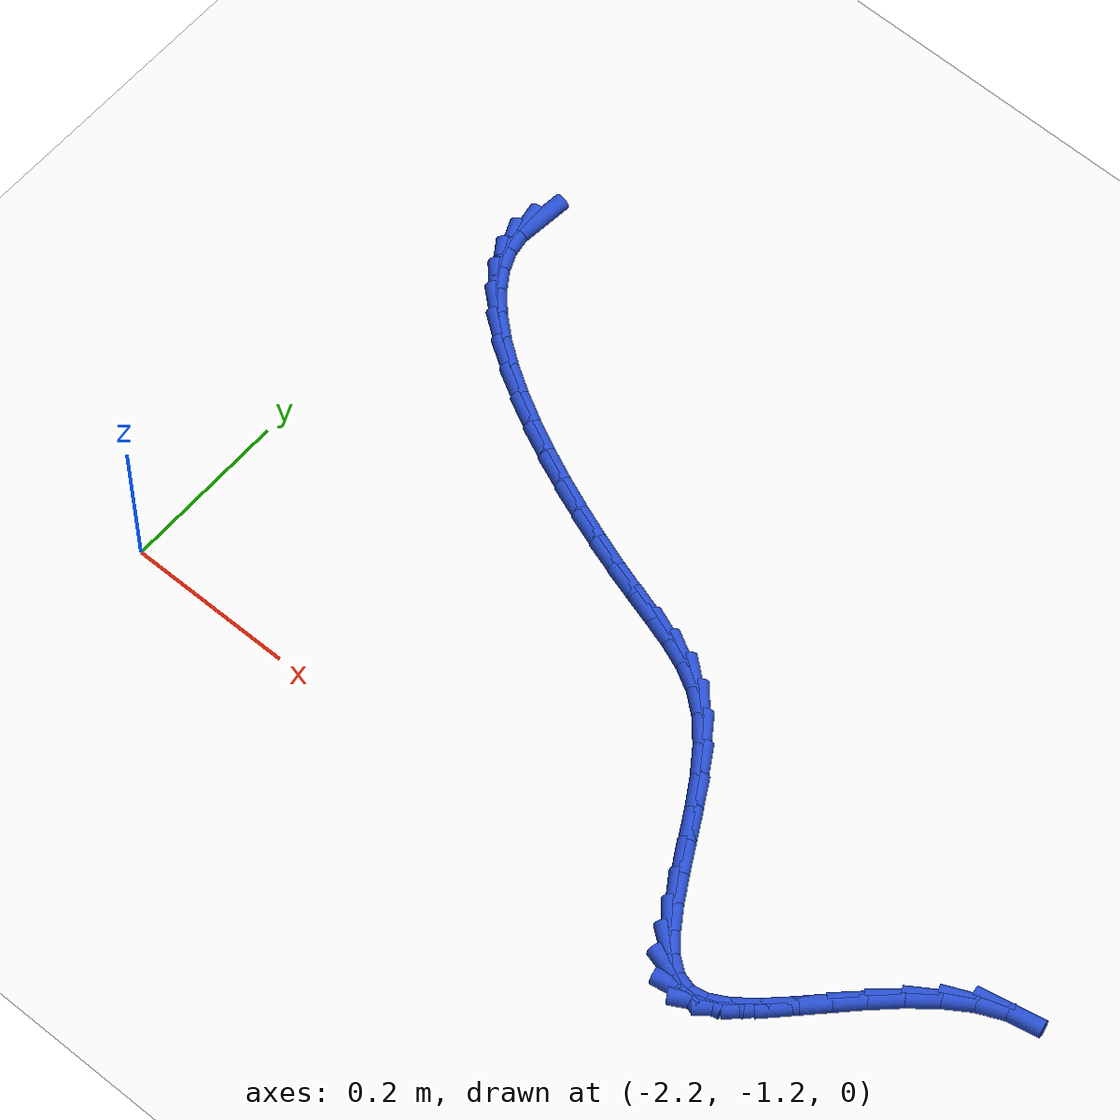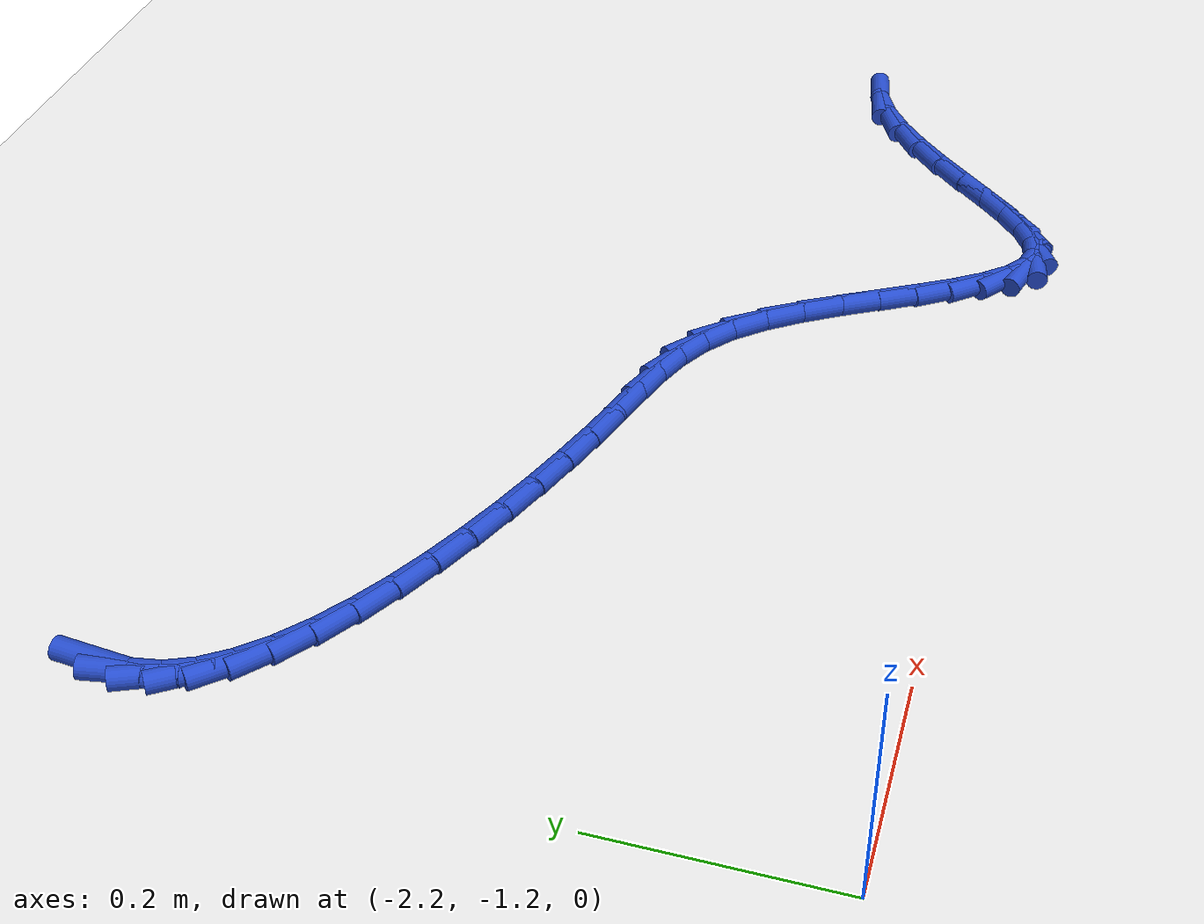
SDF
<sdf version="1.6">
 <world name="default">
  <model name="ground_plane">
   <static>1</static>
   <link name="link">
    <collision name="collision">
     <geometry><plane><normal>0 0 1</normal><size>100 100</size></plane></geometry>
     <surface><friction><ode><mu>100</mu><mu2>50</mu2></ode></friction></surface>
    </collision>
    <visual name="visual">
     <cast_shadows>0</cast_shadows>
     <geometry><plane><normal>0 0 1</normal><size>100 100</size></plane></geometry>
     <material>
      <script><uri>file://media/materials/scripts/gazebo.material</uri><name>Gazebo/WhiteGlow</name></script>
     </material>
    </visual>
   </link>
  </model>
  <model name="line">
   <link name="link_141">
    <pose>-2.1531234752905957 -0.609348968882772 0.01 0 1.57 1.4742450777243057</pose>
    <collision name="collision">
     <geometry><cylinder><radius>0.01</radius><length>0.08</length></cylinder></geometry>
    </collision>
    <visual name="visual">
     <material>
      <script><name>Gazebo/Blue</name><uri>file://media/materials/scripts/gazebo.material</uri></script>
     </material>
     <geometry><cylinder><radius>0.01</radius><length>0.08</length></cylinder></geometry>
    </visual>
   </link>
   <link name="link_142">
    <pose>-2.1555541298114065 -0.6344454526230909 0.01 0 1.57 -1.395660445268938</pose>
    <collision name="collision">
     <geometry><cylinder><radius>0.01</radius><length>0.08</length></cylinder></geometry>
    </collision>
    <visual name="visual">
     <material>
      <script><name>Gazebo/Blue</name><uri>file://media/materials/scripts/gazebo.material</uri></script>
     </material>
     <geometry><cylinder><radius>0.01</radius><length>0.08</length></cylinder></geometry>
    </visual>
   </link>
   <link name="link_143">
    <pose>-2.151208238759221 -0.6590056207835554 0.01 0 1.57 -1.157730686446678</pose>
    <collision name="collision">
     <geometry><cylinder><radius>0.01</radius><length>0.08</length></cylinder></geometry>
    </collision>
    <visual name="visual">
     <material>
      <script><name>Gazebo/Blue</name><uri>file://media/materials/scripts/gazebo.material</uri></script>
     </material>
     <geometry><cylinder><radius>0.01</radius><length>0.08</length></cylinder></geometry>
    </visual>
   </link>
   <link name="link_144">
    <pose>-2.1407092036179516 -0.6829606614308675 0.01 0 1.57 -0.9678378439713753</pose>
    <collision name="collision">
     <geometry><cylinder><radius>0.01</radius><length>0.08</length></cylinder></geometry>
    </collision>
    <visual name="visual">
     <material>
      <script><name>Gazebo/Blue</name><uri>file://media/materials/scripts/gazebo.material</uri></script>
     </material>
     <geometry><cylinder><radius>0.01</radius><length>0.08</length></cylinder></geometry>
    </visual>
   </link>
   <link name="link_145">
    <pose>-2.124680425958652 -0.7062417626278239 0.01 0 1.57 -0.8222598412853989</pose>
    <collision name="collision">
     <geometry><cylinder><radius>0.01</radius><length>0.08</length></cylinder></geometry>
    </collision>
    <visual name="visual">
     <material>
      <script><name>Gazebo/Blue</name><uri>file://media/materials/scripts/gazebo.material</uri></script>
     </material>
     <geometry><cylinder><radius>0.01</radius><length>0.08</length></cylinder></geometry>
    </visual>
   </link>
   <link name="link_146">
    <pose>-2.1037453073523786 -0.7287801124372213 0.01 0 1.57 -0.7111651724665509</pose>
    <collision name="collision">
     <geometry><cylinder><radius>0.01</radius><length>0.08</length></cylinder></geometry>
    </collision>
    <visual name="visual">
     <material>
      <script><name>Gazebo/Blue</name><uri>file://media/materials/scripts/gazebo.material</uri></script>
     </material>
     <geometry><cylinder><radius>0.01</radius><length>0.08</length></cylinder></geometry>
    </visual>
   </link>
   <link name="link_147">
    <pose>-2.0785272493701816 -0.7505068989218565 0.01 0 1.57 -0.6252658404344359</pose>
    <collision name="collision">
     <geometry><cylinder><radius>0.01</radius><length>0.08</length></cylinder></geometry>
    </collision>
    <visual name="visual">
     <material>
      <script><name>Gazebo/Blue</name><uri>file://media/materials/scripts/gazebo.material</uri></script>
     </material>
     <geometry><cylinder><radius>0.01</radius><length>0.08</length></cylinder></geometry>
    </visual>
   </link>
   <link name="link_148">
    <pose>-2.0496496535831197 -0.7713533101445255 0.01 0 1.57 -0.5574976462594152</pose>
    <collision name="collision">
     <geometry><cylinder><radius>0.01</radius><length>0.08</length></cylinder></geometry>
    </collision>
    <visual name="visual">
     <material>
      <script><name>Gazebo/Blue</name><uri>file://media/materials/scripts/gazebo.material</uri></script>
     </material>
     <geometry><cylinder><radius>0.01</radius><length>0.08</length></cylinder></geometry>
    </visual>
   </link>
   <link name="link_149">
    <pose>-2.017735921562245 -0.7912505341680246 0.01 0 1.57 -0.5028357900248931</pose>
    <collision name="collision">
     <geometry><cylinder><radius>0.01</radius><length>0.08</length></cylinder></geometry>
    </collision>
    <visual name="visual">
     <material>
      <script><name>Gazebo/Blue</name><uri>file://media/materials/scripts/gazebo.material</uri></script>
     </material>
     <geometry><cylinder><radius>0.01</radius><length>0.08</length></cylinder></geometry>
    </visual>
   </link>
   <link name="link_150">
    <pose>-1.9834094548786125 -0.810129759055151 0.01 0 1.57 -0.45774956056452326</pose>
    <collision name="collision">
     <geometry><cylinder><radius>0.01</radius><length>0.08</length></cylinder></geometry>
    </collision>
    <visual name="visual">
     <material>
      <script><name>Gazebo/Blue</name><uri>file://media/materials/scripts/gazebo.material</uri></script>
     </material>
     <geometry><cylinder><radius>0.01</radius><length>0.08</length></cylinder></geometry>
    </visual>
   </link>
   <link name="link_151">
    <pose>-1.947293655103276 -0.827922172868701 0.01 0 1.57 -0.41972698442811146</pose>
    <collision name="collision">
     <geometry><cylinder><radius>0.01</radius><length>0.08</length></cylinder></geometry>
    </collision>
    <visual name="visual">
     <material>
      <script><name>Gazebo/Blue</name><uri>file://media/materials/scripts/gazebo.material</uri></script>
     </material>
     <geometry><cylinder><radius>0.01</radius><length>0.08</length></cylinder></geometry>
    </visual>
   </link>
   <link name="link_152">
    <pose>-1.91001192380729 -0.8445589636714712 0.01 0 1.57 -0.38693175979010447</pose>
    <collision name="collision">
     <geometry><cylinder><radius>0.01</radius><length>0.08</length></cylinder></geometry>
    </collision>
    <visual name="visual">
     <material>
      <script><name>Gazebo/Blue</name><uri>file://media/materials/scripts/gazebo.material</uri></script>
     </material>
     <geometry><cylinder><radius>0.01</radius><length>0.08</length></cylinder></geometry>
    </visual>
   </link>
   <link name="link_153">
    <pose>-1.8721876625617087 -0.8599713195262579 0.01 0 1.57 -0.3579652869520564</pose>
    <collision name="collision">
     <geometry><cylinder><radius>0.01</radius><length>0.08</length></cylinder></geometry>
    </collision>
    <visual name="visual">
     <material>
      <script><name>Gazebo/Blue</name><uri>file://media/materials/scripts/gazebo.material</uri></script>
     </material>
     <geometry><cylinder><radius>0.01</radius><length>0.08</length></cylinder></geometry>
    </visual>
   </link>
   <link name="link_154">
    <pose>-1.8344442729375867 -0.874090428495858 0.01 0 1.57 -0.3316960588260181</pose>
    <collision name="collision">
     <geometry><cylinder><radius>0.01</radius><length>0.08</length></cylinder></geometry>
    </collision>
    <visual name="visual">
     <material>
      <script><name>Gazebo/Blue</name><uri>file://media/materials/scripts/gazebo.material</uri></script>
     </material>
     <geometry><cylinder><radius>0.01</radius><length>0.08</length></cylinder></geometry>
    </visual>
   </link>
   <link name="link_155">
    <pose>-1.7974051565059774 -0.8868474786430686 0.01 0 1.57 -0.30712306382805454</pose>
    <collision name="collision">
     <geometry><cylinder><radius>0.01</radius><length>0.08</length></cylinder></geometry>
    </collision>
    <visual name="visual">
     <material>
      <script><name>Gazebo/Blue</name><uri>file://media/materials/scripts/gazebo.material</uri></script>
     </material>
     <geometry><cylinder><radius>0.01</radius><length>0.08</length></cylinder></geometry>
    </visual>
   </link>
   <link name="link_156">
    <pose>-1.761693714837937 -0.8981736580306848 0.01 0 1.57 -0.28714827582992497</pose>
    <collision name="collision">
     <geometry><cylinder><radius>0.01</radius><length>0.08</length></cylinder></geometry>
    </collision>
    <visual name="visual">
     <material>
      <script><name>Gazebo/Blue</name><uri>file://media/materials/scripts/gazebo.material</uri></script>
     </material>
     <geometry><cylinder><radius>0.01</radius><length>0.08</length></cylinder></geometry>
    </visual>
   </link>
   <link name="link_157">
    <pose>-1.7278816074421781 -0.9081587029472005 0.01 0 1.57 -0.3029604146652085</pose>
    <collision name="collision">
     <geometry><cylinder><radius>0.01</radius><length>0.08</length></cylinder></geometry>
    </collision>
    <visual name="visual">
     <material>
      <script><name>Gazebo/Blue</name><uri>file://media/materials/scripts/gazebo.material</uri></script>
     </material>
     <geometry><cylinder><radius>0.01</radius><length>0.08</length></cylinder></geometry>
    </visual>
   </link>
   <link name="link_158">
    <pose>-1.696154157811532 -0.9180761619814127 0.01 0 1.57 -0.37484650517318824</pose>
    <collision name="collision">
     <geometry><cylinder><radius>0.01</radius><length>0.08</length></cylinder></geometry>
    </collision>
    <visual name="visual">
     <material>
      <script><name>Gazebo/Blue</name><uri>file://media/materials/scripts/gazebo.material</uri></script>
     </material>
     <geometry><cylinder><radius>0.01</radius><length>0.08</length></cylinder></geometry>
    </visual>
   </link>
   <link name="link_159">
    <pose>-1.6665219826912334 -0.9297349208075679 0.01 0 1.57 -0.5048392511944144</pose>
    <collision name="collision">
     <geometry><cylinder><radius>0.01</radius><length>0.08</length></cylinder></geometry>
    </collision>
    <visual name="visual">
     <material>
      <script><name>Gazebo/Blue</name><uri>file://media/materials/scripts/gazebo.material</uri></script>
     </material>
     <geometry><cylinder><radius>0.01</radius><length>0.08</length></cylinder></geometry>
    </visual>
   </link>
   <link name="link_160">
    <pose>-1.6389948409751 -0.9449464937315192 0.01 0 1.57 -0.6795646201628691</pose>
    <collision name="collision">
     <geometry><cylinder><radius>0.01</radius><length>0.08</length></cylinder></geometry>
    </collision>
    <visual name="visual">
     <material>
      <script><name>Gazebo/Blue</name><uri>file://media/materials/scripts/gazebo.material</uri></script>
     </material>
     <geometry><cylinder><radius>0.01</radius><length>0.08</length></cylinder></geometry>
    </visual>
   </link>
   <link name="link_161">
    <pose>-1.613578567995582 -0.965481356447318 0.01 0 1.57 -0.8404703676030962</pose>
    <collision name="collision">
     <geometry><cylinder><radius>0.01</radius><length>0.08</length></cylinder></geometry>
    </collision>
    <visual name="visual">
     <material>
      <script><name>Gazebo/Blue</name><uri>file://media/materials/scripts/gazebo.material</uri></script>
     </material>
     <geometry><cylinder><radius>0.01</radius><length>0.08</length></cylinder></geometry>
    </visual>
   </link>
   <link name="link_162">
    <pose>-1.5901398981726567 -0.9916550543411943 0.01 0 1.57 -0.9480683690479956</pose>
    <collision name="collision">
     <geometry><cylinder><radius>0.01</radius><length>0.08</length></cylinder></geometry>
    </collision>
    <visual name="visual">
     <material>
      <script><name>Gazebo/Blue</name><uri>file://media/materials/scripts/gazebo.material</uri></script>
     </material>
     <geometry><cylinder><radius>0.01</radius><length>0.08</length></cylinder></geometry>
    </visual>
   </link>
   <link name="link_163">
    <pose>-1.5683722745252722 -1.021970586016115 0.01 0 1.57 -1.014722988148654</pose>
    <collision name="collision">
     <geometry><cylinder><radius>0.01</radius><length>0.08</length></cylinder></geometry>
    </collision>
    <visual name="visual">
     <material>
      <script><name>Gazebo/Blue</name><uri>file://media/materials/scripts/gazebo.material</uri></script>
     </material>
     <geometry><cylinder><radius>0.01</radius><length>0.08</length></cylinder></geometry>
    </visual>
   </link>
   <link name="link_164">
    <pose>-1.5479582747090603 -1.0548173034705028 0.01 0 1.57 -1.0498165082632798</pose>
    <collision name="collision">
     <geometry><cylinder><radius>0.01</radius><length>0.08</length></cylinder></geometry>
    </collision>
    <visual name="visual">
     <material>
      <script><name>Gazebo/Blue</name><uri>file://media/materials/scripts/gazebo.material</uri></script>
     </material>
     <geometry><cylinder><radius>0.01</radius><length>0.08</length></cylinder></geometry>
    </visual>
   </link>
   <link name="link_165">
    <pose>-1.5285804763796529 -1.0885845587027794 0.01 0 1.57 -1.0571876416346404</pose>
    <collision name="collision">
     <geometry><cylinder><radius>0.01</radius><length>0.08</length></cylinder></geometry>
    </collision>
    <visual name="visual">
     <material>
      <script><name>Gazebo/Blue</name><uri>file://media/materials/scripts/gazebo.material</uri></script>
     </material>
     <geometry><cylinder><radius>0.01</radius><length>0.08</length></cylinder></geometry>
    </visual>
   </link>
   <link name="link_166">
    <pose>-1.509921457192682 -1.1216617037113663 0.01 0 1.57 -1.0353651573373575</pose>
    <collision name="collision">
     <geometry><cylinder><radius>0.01</radius><length>0.08</length></cylinder></geometry>
    </collision>
    <visual name="visual">
     <material>
      <script><name>Gazebo/Blue</name><uri>file://media/materials/scripts/gazebo.material</uri></script>
     </material>
     <geometry><cylinder><radius>0.01</radius><length>0.08</length></cylinder></geometry>
    </visual>
   </link>
   <link name="link_167">
    <pose>-1.4916637948037796 -1.1524380904946854 0.01 0 1.57 -0.9760279083145268</pose>
    <collision name="collision">
     <geometry><cylinder><radius>0.01</radius><length>0.08</length></cylinder></geometry>
    </collision>
    <visual name="visual">
     <material>
      <script><name>Gazebo/Blue</name><uri>file://media/materials/scripts/gazebo.material</uri></script>
     </material>
     <geometry><cylinder><radius>0.01</radius><length>0.08</length></cylinder></geometry>
    </visual>
   </link>
   <link name="link_168">
    <pose>-1.473490066868578 -1.1793030710511583 0.01 0 1.57 -0.8591184120471447</pose>
    <collision name="collision">
     <geometry><cylinder><radius>0.01</radius><length>0.08</length></cylinder></geometry>
    </collision>
    <visual name="visual">
     <material>
      <script><name>Gazebo/Blue</name><uri>file://media/materials/scripts/gazebo.material</uri></script>
     </material>
     <geometry><cylinder><radius>0.01</radius><length>0.08</length></cylinder></geometry>
    </visual>
   </link>
   <link name="link_169">
    <pose>-1.455082851042709 -1.2006459973792067 0.01 0 1.57 -0.6432184742175473</pose>
    <collision name="collision">
     <geometry><cylinder><radius>0.01</radius><length>0.08</length></cylinder></geometry>
    </collision>
    <visual name="visual">
     <material>
      <script><name>Gazebo/Blue</name><uri>file://media/materials/scripts/gazebo.material</uri></script>
     </material>
     <geometry><cylinder><radius>0.01</radius><length>0.08</length></cylinder></geometry>
    </visual>
   </link>
   <link name="link_170">
    <pose>-1.4361247249818034 -1.2148562214772527 0.01 0 1.57 -0.2690906244056139</pose>
    <collision name="collision">
     <geometry><cylinder><radius>0.01</radius><length>0.08</length></cylinder></geometry>
    </collision>
    <visual name="visual">
     <material>
      <script><name>Gazebo/Blue</name><uri>file://media/materials/scripts/gazebo.material</uri></script>
     </material>
     <geometry><cylinder><radius>0.01</radius><length>0.08</length></cylinder></geometry>
    </visual>
   </link>
   <link name="link_171">
    <pose>-1.4162983436753953 -1.2203239280796172 0.01 0 1.57 0.193765197358836</pose>
    <collision name="collision">
     <geometry><cylinder><radius>0.01</radius><length>0.08</length></cylinder></geometry>
    </collision>
    <visual name="visual">
     <material>
      <script><name>Gazebo/Blue</name><uri>file://media/materials/scripts/gazebo.material</uri></script>
     </material>
     <geometry><cylinder><radius>0.01</radius><length>0.08</length></cylinder></geometry>
    </visual>
   </link>
   <link name="link_172">
    <pose>-1.3953583936291496 -1.2162149414488446 0.01 0 1.57 0.5082281213074032</pose>
    <collision name="collision">
     <geometry><cylinder><radius>0.01</radius><length>0.08</length></cylinder></geometry>
    </collision>
    <visual name="visual">
     <material>
      <script><name>Gazebo/Blue</name><uri>file://media/materials/scripts/gazebo.material</uri></script>
     </material>
     <geometry><cylinder><radius>0.01</radius><length>0.08</length></cylinder></geometry>
    </visual>
   </link>
   <link name="link_173">
    <pose>-1.3732650873925376 -1.203908202163911 0.01 0 1.57 0.6782292964815405</pose>
    <collision name="collision">
     <geometry><cylinder><radius>0.01</radius><length>0.08</length></cylinder></geometry>
    </collision>
    <visual name="visual">
     <material>
      <script><name>Gazebo/Blue</name><uri>file://media/materials/scripts/gazebo.material</uri></script>
     </material>
     <geometry><cylinder><radius>0.01</radius><length>0.08</length></cylinder></geometry>
    </visual>
   </link>
   <link name="link_174">
    <pose>-1.3500150545941723 -1.1851747920164315 0.01 0 1.57 0.7640384600237904</pose>
    <collision name="collision">
     <geometry><cylinder><radius>0.01</radius><length>0.08</length></cylinder></geometry>
    </collision>
    <visual name="visual">
     <material>
      <script><name>Gazebo/Blue</name><uri>file://media/materials/scripts/gazebo.material</uri></script>
     </material>
     <geometry><cylinder><radius>0.01</radius><length>0.08</length></cylinder></geometry>
    </visual>
   </link>
   <link name="link_175">
    <pose>-1.325604924862667 -1.161785792798022 0.01 0 1.57 0.7988968335709231</pose>
    <collision name="collision">
     <geometry><cylinder><radius>0.01</radius><length>0.08</length></cylinder></geometry>
    </collision>
    <visual name="visual">
     <material>
      <script><name>Gazebo/Blue</name><uri>file://media/materials/scripts/gazebo.material</uri></script>
     </material>
     <geometry><cylinder><radius>0.01</radius><length>0.08</length></cylinder></geometry>
    </visual>
   </link>
   <link name="link_176">
    <pose>-1.3000313278266356 -1.1355122863002987 0.01 0 1.57 0.7973415955767611</pose>
    <collision name="collision">
     <geometry><cylinder><radius>0.01</radius><length>0.08</length></cylinder></geometry>
    </collision>
    <visual name="visual">
     <material>
      <script><name>Gazebo/Blue</name><uri>file://media/materials/scripts/gazebo.material</uri></script>
     </material>
     <geometry><cylinder><radius>0.01</radius><length>0.08</length></cylinder></geometry>
    </visual>
   </link>
   <link name="link_177">
    <pose>-1.2732908931146905 -1.1081253543148752 0.01 0 1.57 0.763780579033432</pose>
    <collision name="collision">
     <geometry><cylinder><radius>0.01</radius><length>0.08</length></cylinder></geometry>
    </collision>
    <visual name="visual">
     <material>
      <script><name>Gazebo/Blue</name><uri>file://media/materials/scripts/gazebo.material</uri></script>
     </material>
     <geometry><cylinder><radius>0.01</radius><length>0.08</length></cylinder></geometry>
    </visual>
   </link>
   <link name="link_178">
    <pose>-1.2453802503554463 -1.0813960786333698 0.01 0 1.57 0.6960291852078384</pose>
    <collision name="collision">
     <geometry><cylinder><radius>0.01</radius><length>0.08</length></cylinder></geometry>
    </collision>
    <visual name="visual">
     <material>
      <script><name>Gazebo/Blue</name><uri>file://media/materials/scripts/gazebo.material</uri></script>
     </material>
     <geometry><cylinder><radius>0.01</radius><length>0.08</length></cylinder></geometry>
    </visual>
   </link>
   <link name="link_179">
    <pose>-1.2162960291775164 -1.0570955410473968 0.01 0 1.57 0.5863215963781937</pose>
    <collision name="collision">
     <geometry><cylinder><radius>0.01</radius><length>0.08</length></cylinder></geometry>
    </collision>
    <visual name="visual">
     <material>
      <script><name>Gazebo/Blue</name><uri>file://media/materials/scripts/gazebo.material</uri></script>
     </material>
     <geometry><cylinder><radius>0.01</radius><length>0.08</length></cylinder></geometry>
    </visual>
   </link>
   <link name="link_180">
    <pose>-1.1860348592095133 -1.0369948233485722 0.01 0 1.57 0.42235513953636195</pose>
    <collision name="collision">
     <geometry><cylinder><radius>0.01</radius><length>0.08</length></cylinder></geometry>
    </collision>
    <visual name="visual">
     <material>
      <script><name>Gazebo/Blue</name><uri>file://media/materials/scripts/gazebo.material</uri></script>
     </material>
     <geometry><cylinder><radius>0.01</radius><length>0.08</length></cylinder></geometry>
    </visual>
   </link>
   <link name="link_181">
    <pose>-1.154593370080051 -1.0228650073285113 0.01 0 1.57 0.19366610011476856</pose>
    <collision name="collision">
     <geometry><cylinder><radius>0.01</radius><length>0.08</length></cylinder></geometry>
    </collision>
    <visual name="visual">
     <material>
      <script><name>Gazebo/Blue</name><uri>file://media/materials/scripts/gazebo.material</uri></script>
     </material>
     <geometry><cylinder><radius>0.01</radius><length>0.08</length></cylinder></geometry>
    </visual>
   </link>
  </model>
 </world>
</sdf>
